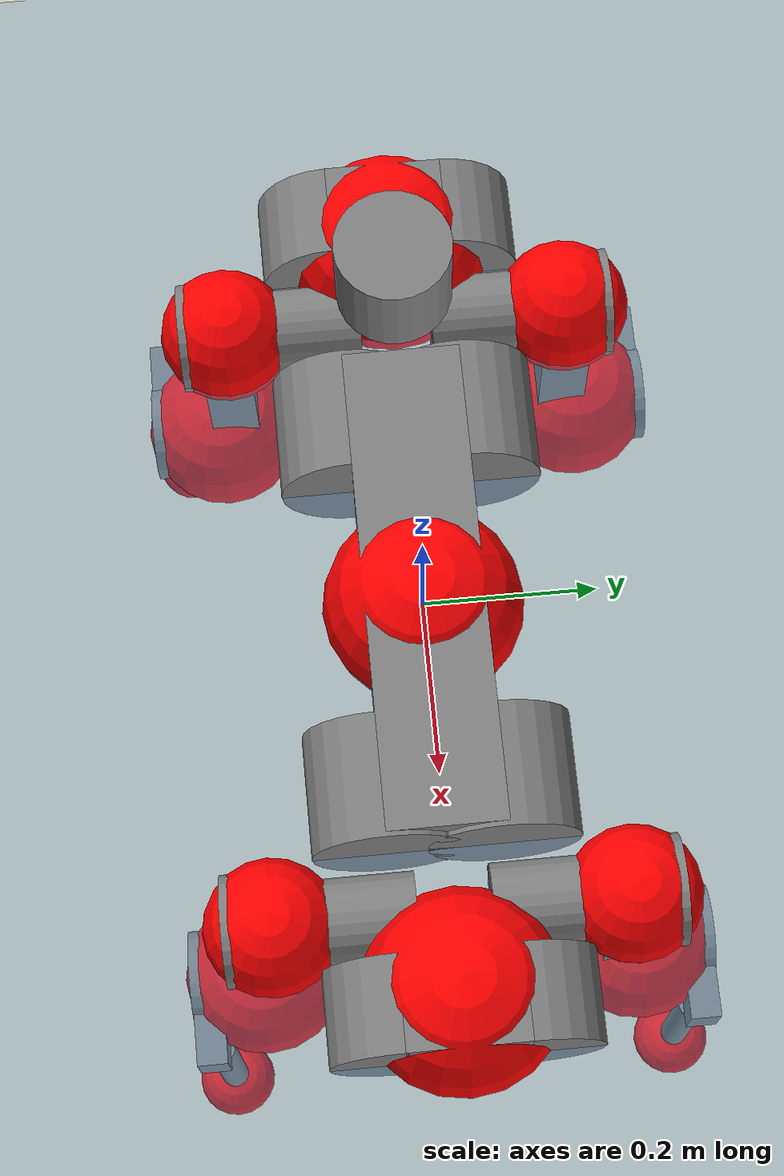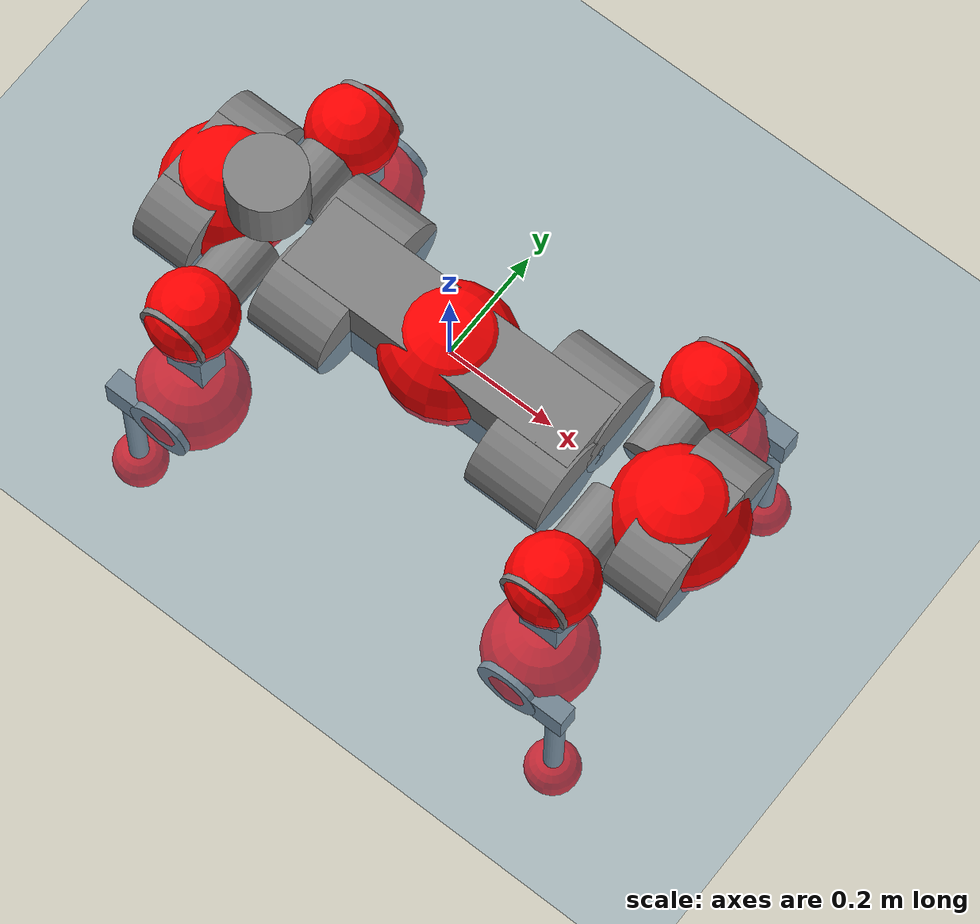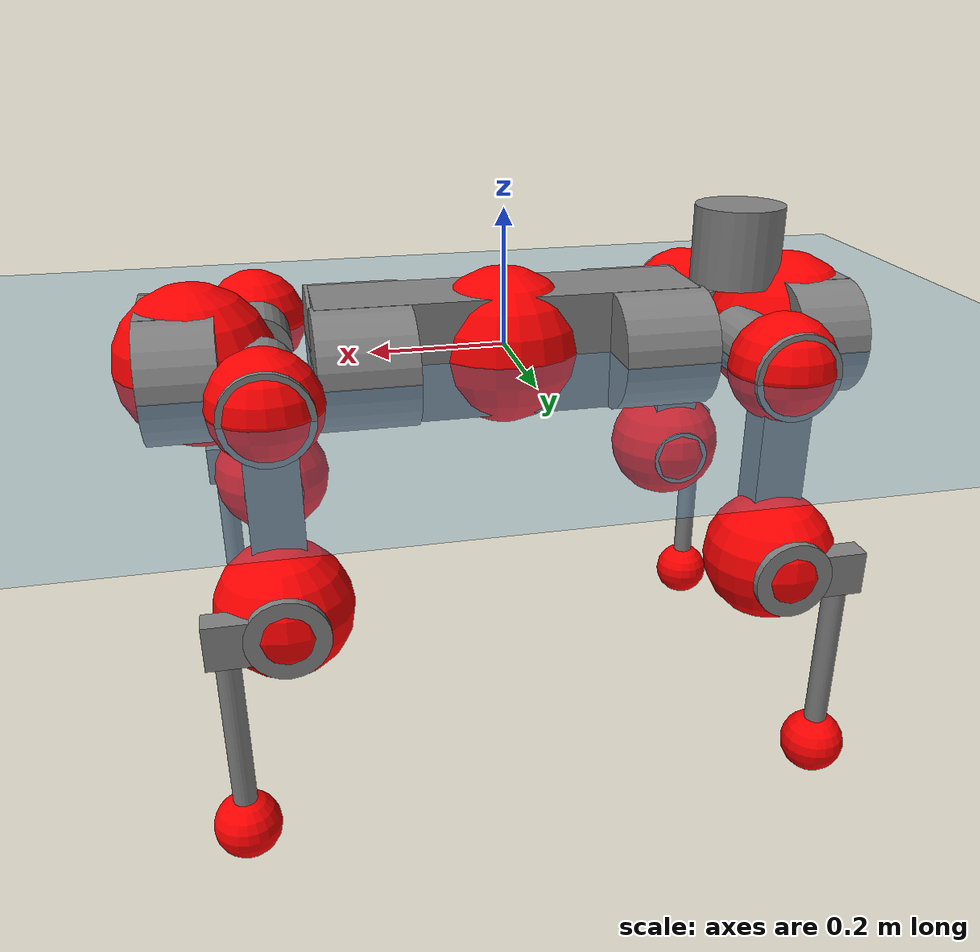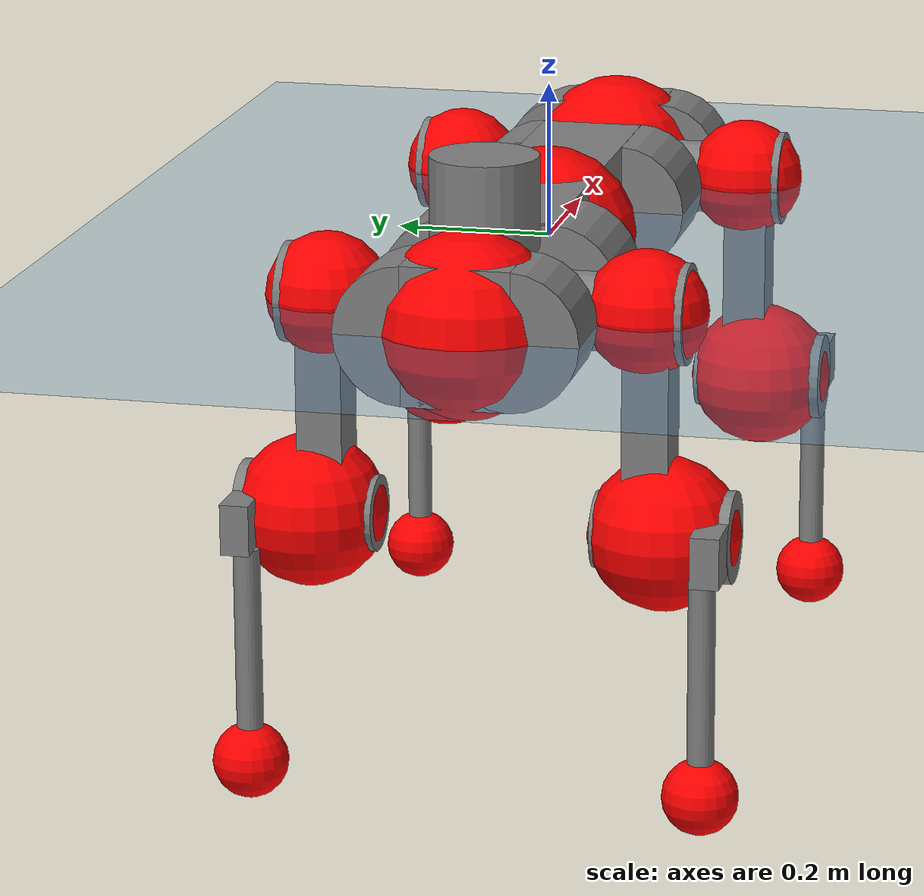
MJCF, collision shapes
<mujoco model="anymal_c">
  <compiler angle="radian" assetdir="assets" balanceinertia="true" inertiafromgeom="false"/>

  <option timestep="0.005" density="1.2" viscosity="2e-05"/>

  <size nkey="1"/>

  <visual>
    <quality shadowsize="8192"/>
    <map shadowclip="0.5"/>
  </visual>

  <default>
    <default class="/">
      <material specular="0" shininess="0.25"/>
      <geom contype="0" conaffinity="0" group="1" solref="-1000 -80"/>
      <site size="0.01 0.005 0.005" group="5"/>
      <general forcelimited="true" forcerange="-80 80" biastype="affine" gainprm="80" biasprm="0 -80 -2"/>
      <default class="anymal_c">
        <joint armature="0.01" damping="0.01" frictionloss="0.1"/>
        <default class="visual">
          <geom type="mesh" group="2"/>
          <default class="visual_zflip"/>
        </default>
        <default class="collision">
          <geom type="cylinder" group="3"/>
          <default class="foot">
            <geom size="0.03 0 0" type="sphere" condim="6" priority="1" friction="0.8 0.02 0.01" solimp="0.015 1 0.03"/>
          </default>
        </default>
      </default>
      <default class="reward_collision_sphere">
        <geom group="5" rgba="1 0 0 1"/>
      </default>
    </default>
  </default>

  <asset>
    <texture type="skybox" colorspace="auto" name="//unnamed_texture_0" builtin="gradient" rgb1="0.95 0.95 0.95" rgb2="0.95 0.95 0.95" width="100" height="600"/>
    <texture type="2d" colorspace="auto" name="texplane" builtin="checker" rgb1="0.345 0.575 0.748" rgb2="0.345 0.575 0.748" markrgb="1 1 1" width="512" height="512"/>
    <texture type="2d" colorspace="linear" name="base" file="base.png"/>
    <texture type="2d" colorspace="linear" name="top_shell" file="top_shell.png"/>
    <texture type="2d" colorspace="linear" name="bottom_shell" file="bottom_shell.png"/>
    <texture type="2d" colorspace="linear" name="remote" file="remote.png"/>
    <texture type="2d" colorspace="linear" name="hatch" file="hatch.png"/>
    <texture type="2d" colorspace="linear" name="handle" file="handle.png"/>
    <texture type="2d" colorspace="linear" name="face" file="face.png"/>
    <texture type="2d" colorspace="linear" name="battery" file="battery.png"/>
    <texture type="2d" colorspace="linear" name="lidar_cage" file="lidar_cage.png"/>
    <texture type="2d" colorspace="linear" name="depth_camera" file="depth_camera.png"/>
    <texture type="2d" colorspace="linear" name="wide_angle_camera" file="wide_angle_camera.png"/>
    <texture type="2d" colorspace="linear" name="lidar" file="lidar.png"/>
    <texture type="2d" colorspace="linear" name="drive" file="drive.png"/>
    <texture type="2d" colorspace="linear" name="hip_l" file="hip_l.png"/>
    <texture type="2d" colorspace="linear" name="shank_l" file="shank_l.png"/>
    <texture type="2d" colorspace="linear" name="foot" file="foot.png"/>
    <texture type="2d" colorspace="linear" name="thigh" file="thigh.png"/>
    <texture type="2d" colorspace="linear" name="shank_r" file="shank_r.png"/>
    <texture type="2d" colorspace="linear" name="hip_r" file="hip_r.png"/>
    <material name="MatPlane" class="/" texture="texplane" texuniform="true" texrepeat="2 2" specular="0.9" shininess="0.5"/>
    <material name="black_plastic" class="/" rgba="0.007 0.007 0.007 1"/>
    <material name="green" class="/" rgba="0.052 0.178 0.033 1"/>
    <material name="red" class="/" rgba="0.178 0.006 0.005 1"/>
    <material name="yellow" class="/" rgba="0.178 0.119 0.006 1"/>
    <material name="lwl" class="/" rgba="0.8 0.8 0.8 1"/>
    <material name="base" class="/" texture="base"/>
    <material name="top_shell" class="/" texture="top_shell"/>
    <material name="bottom_shell" class="/" texture="bottom_shell"/>
    <material name="hip_l" class="/" texture="hip_l"/>
    <material name="thigh" class="/" texture="thigh"/>
    <material name="shank_l" class="/" texture="shank_l"/>
    <material name="foot" class="/" texture="foot"/>
    <material name="hip_r" class="/" texture="hip_r"/>
    <material name="shank" class="/" texture="shank_r"/>
    <material name="hatch" class="/" texture="hatch"/>
    <material name="remote" class="/" texture="remote"/>
    <material name="handle" class="/" texture="handle"/>
    <material name="face" class="/" texture="face"/>
    <material name="depth_camera" class="/" texture="depth_camera"/>
    <material name="wide_angle_camera" class="/" texture="wide_angle_camera"/>
    <material name="battery" class="/" texture="battery"/>
    <material name="lidar_cage" class="/" texture="lidar_cage"/>
    <material name="lidar" class="/" texture="lidar"/>
    <material name="drive" class="/" texture="drive"/>
    <mesh name="base_0" class="/" file="base_0.obj"/>
    <mesh name="base_1" class="/" file="base_1.obj"/>
    <mesh name="base_2" class="/" file="base_2.obj"/>
    <mesh name="base_3" class="/" file="base_3.obj"/>
    <mesh name="base_4" class="/" file="base_4.obj"/>
    <mesh name="base_5" class="/" file="base_5.obj"/>
    <mesh name="top_shell" class="/" file="top_shell.obj"/>
    <mesh name="bottom_shell" class="/" file="bottom_shell.obj"/>
    <mesh name="remote" class="/" file="remote.obj"/>
    <mesh name="handle" class="/" file="handle.obj"/>
    <mesh name="face" class="/" file="face.obj"/>
    <mesh name="wide_angle_camera" class="/" file="wide_angle_camera.obj"/>
    <mesh name="depth_camera" class="/" file="depth_camera.obj"/>
    <mesh name="battery" class="/" file="battery.obj"/>
    <mesh name="lidar_cage" class="/" file="lidar_cage.obj"/>
    <mesh name="lidar" class="/" file="lidar.obj"/>
    <mesh name="drive" class="/" file="drive.obj"/>
    <mesh name="hip_l" class="/" file="hip_l.obj"/>
    <mesh name="thigh" class="/" file="thigh.obj"/>
    <mesh name="shank_l" class="/" file="shank_l.obj"/>
    <mesh name="foot" class="/" file="foot.obj"/>
    <mesh name="hip_r" class="/" file="hip_r.obj"/>
    <mesh name="hatch" class="/" file="hatch.obj"/>
    <mesh name="shank_r" class="/" file="shank_r.obj"/>
  </asset>

  <worldbody>
    <geom name="floor" class="/" size="100 100 0.125" type="plane" group="0" material="MatPlane"/>
    <light name="toplight_shadow" class="/" pos="0 0 5" dir="0.0990148 0.0990148 -0.990148" type="directional" ambient="0.04 0.04 0.04" diffuse="0.55 0.55 0.55" specular="0.12 0.12 0.12"/>
    <light name="toplight_fill" class="/" pos="0 0 5" dir="0.0990148 0.0990148 -0.990148" type="directional" castshadow="false" ambient="0.04 0.04 0.04" diffuse="0.3 0.3 0.3" specular="0.08 0.08 0.08"/>
    <body name="trunk" childclass="anymal_c" pos="0.000148965 0.000657043 -0.000279994" quat="1 3.73829e-06 2.02993e-06 -4.49484e-06">
      <inertial pos="0.00275821 0.000336517 0.0480805" quat="0.502191 0.495976 0.501018 0.500792" mass="17.5544" diaginertia="0.621971 0.413796 0.205837"/>
      <joint name="//unnamed_joint_0" type="free" armature="0" damping="0" frictionloss="0"/>
      <geom name="//unnamed_geom_1" class="visual" material="green" mesh="base_0"/>
      <geom name="//unnamed_geom_2" class="visual" material="yellow" mesh="base_1"/>
      <geom name="//unnamed_geom_3" class="visual" material="red" mesh="base_2"/>
      <geom name="//unnamed_geom_4" class="visual" material="black_plastic" mesh="base_3"/>
      <geom name="//unnamed_geom_5" class="visual" material="lwl" mesh="base_4"/>
      <geom name="//unnamed_geom_6" class="visual" material="base" mesh="base_5"/>
      <geom name="trunk_1" class="collision" size="0.280597 0.0677303 0.0870818" type="box"/>
      <geom name="trunk_2" class="collision" size="0.0870818 0.0701492" pos="0.215946 0.0644334 0" quat="0.707107 0 0.707107 0"/>
      <geom name="trunk_3" class="collision" size="0.0870818 0.0701492" pos="-0.215946 0.0644334 0" quat="0.707107 0 0.707107 0"/>
      <geom name="trunk_4" class="collision" size="0.0870818 0.0701492" pos="0.215946 -0.0644334 0" quat="0.707107 0 0.707107 0"/>
      <geom name="trunk_5" class="collision" size="0.0870818 0.0701492" pos="-0.215946 -0.0644334 0" quat="0.707107 0 0.707107 0"/>
      <geom name="//unnamed_geom_12" class="visual" material="top_shell" mesh="top_shell"/>
      <geom name="//unnamed_geom_13" class="visual" material="bottom_shell" mesh="bottom_shell"/>
      <geom name="//unnamed_geom_14" class="visual" material="remote" mesh="remote"/>
      <geom name="//unnamed_geom_15" class="visual" material="handle" mesh="handle"/>
      <geom name="//unnamed_geom_16" class="visual" pos="0.411539 0 0" quat="1 0 0 0" material="face" mesh="face"/>
      <geom name="trunk_6" class="collision" size="0.0532167 0.0677303 0.0870818" pos="0.466146 0 0" type="box"/>
      <geom name="//unnamed_geom_18" class="collision" size="0.0870818 0.0532167" pos="0.466146 0.0644334 0" quat="0.707107 0 0.707107 0"/>
      <geom name="//unnamed_geom_19" class="collision" size="0.0870818 0.0532167" pos="0.466146 -0.0644334 0" quat="0.707107 0 0.707107 0"/>
      <geom name="//unnamed_geom_20" class="visual" pos="0.458352 0 -0.028864" quat="0.965926 0 0.258819 0" material="depth_camera" mesh="depth_camera"/>
      <geom name="//unnamed_geom_21" class="visual" pos="0.509335 0 0.0148112" material="wide_angle_camera" mesh="wide_angle_camera"/>
      <geom name="//unnamed_geom_22" class="visual_zflip" pos="-0.411539 0 0" quat="0 0 0 1" material="face" mesh="face"/>
      <geom name="trunk_7" class="collision" size="0.0532167 0.0677303 0.0870818" pos="-0.466146 0 0" quat="0 0 0 1" type="box"/>
      <geom name="//unnamed_geom_24" class="collision" size="0.0870818 0.0532167" pos="-0.466146 -0.0644334 0" quat="0 -0.707107 0 0.707107"/>
      <geom name="//unnamed_geom_25" class="collision" size="0.0870818 0.0532167" pos="-0.466146 0.0644334 0" quat="0 -0.707107 0 0.707107"/>
      <geom name="//unnamed_geom_26" class="visual" pos="-0.458352 0 -0.028864" quat="0 -0.258819 0 0.965926" material="depth_camera" mesh="depth_camera"/>
      <geom name="//unnamed_geom_27" class="visual_zflip" pos="-0.509335 0 0.0148112" quat="0 0 0 1" material="wide_angle_camera" mesh="wide_angle_camera"/>
      <geom name="//unnamed_geom_28" class="visual" material="battery" mesh="battery"/>
      <geom name="//unnamed_geom_29" class="visual" pos="0 0.0694298 0.0287682" quat="0.683013 -0.183013 0.183013 0.683013" material="depth_camera" mesh="depth_camera"/>
      <geom name="//unnamed_geom_30" class="visual" pos="0 -0.0694298 0.0287682" quat="0.683013 0.183013 0.183013 -0.683013" material="depth_camera" mesh="depth_camera"/>
      <geom name="//unnamed_geom_31" class="visual" pos="-0.3614 0 0.0727204" quat="1 0 0 0" material="lidar_cage" mesh="lidar_cage"/>
      <geom name="trunk_8" class="collision" size="0.0677303 0.0580545" pos="-0.3614 0 0.132084"/>
      <geom name="//unnamed_geom_33" class="visual" pos="-0.3614 -2.84358e-05 0.140692" quat="0.707107 0 0 -0.707107" material="lidar" mesh="lidar"/>
      <geom name="//unnamed_geom_34" class="visual" pos="0.297758 0.0957541 -1.18882e-09" quat="0.258819 0.965926 0 0" material="drive" mesh="drive"/>
      <geom name="//unnamed_geom_35" class="visual" pos="0.297758 -0.0957541 1.18882e-09" quat="0.258819 -0.965926 0 0" material="drive" mesh="drive"/>
      <geom name="//unnamed_geom_36" class="visual" pos="-0.297758 0.0957541 1.18882e-09" quat="0 0 0.965926 -0.258819" material="drive" mesh="drive"/>
      <geom name="//unnamed_geom_37" class="visual" pos="-0.297758 -0.0957541 -1.18882e-09" quat="0 0 -0.965926 -0.258819" material="drive" mesh="drive"/>
      <geom name="//unnamed_geom_38" class="visual" pos="0.115171 0 0.0722257" quat="1 0 0 0" material="hatch" mesh="hatch"/>
      <geom name="//unnamed_geom_39" class="reward_collision_sphere" size="0.116109"/>
      <geom name="//unnamed_geom_40" class="reward_collision_sphere" size="0.116109" pos="0.446785 0 0"/>
      <geom name="//unnamed_geom_41" class="reward_collision_sphere" size="0.116109" pos="-0.446785 0 0"/>
      <site name="imu" pos="0.243358 0.00348775 0.0490939" size="0.00967576"/>
      <camera name="track" pos="0 -1.84095 0" quat="0.707107 0.707107 0 0" mode="trackcom"/>
      <camera name="ego_camera" pos="0.446785 0 -0.0395757" quat="-0.5 -0.5 0.5 0.5"/>
      <body name="LF_HIP" pos="0.297245 0.0968997 -0.000238389" quat="0.258655 0.96597 -8.42269e-05 -0.000119256">
        <inertial pos="0.0562125 -0.013768 -0.00865329" quat="-0.127233 0.710086 -0.134788 0.679281" mass="2.53533" diaginertia="0.0056475 0.00329241 0.0031348"/>
        <joint name="LF_HAA" pos="0 0 0" axis="0.999999 9.53406e-05 0.00159333" range="-0.700384 0.476884" armature="0.0098297" damping="0.0107419" frictionloss="0.0924509"/>
        <geom name="//unnamed_geom_42" class="visual" pos="0 -6.99327e-05 1.14864e-05" quat="0.258819 -0.965926 0 0" material="hip_l" mesh="hip_l"/>
        <geom name="//unnamed_geom_43" class="visual" pos="0.0594721 -0.0711346 -0.0415793" quat="0.183013 -0.683013 0.683013 0.183013" material="drive" mesh="drive"/>
        <geom name="//unnamed_geom_44" class="collision" size="0.0483788 0.0677303" pos="0.0594721 -0.0110087 -0.00683176" quat="-0.353553 -0.612372 0.612372 -0.353553"/>
        <body name="LF_THIGH" pos="0.0597756 -0.0665362 -0.0412822" quat="0.183093 -0.683244 0.682684 0.183298">
          <inertial pos="0.0299917 -0.000775699 -0.242788" quat="0.993115 -0.00455868 -0.0816213 0.0839017" mass="2.78093" diaginertia="0.0290509 0.0197075 0.00394646"/>
          <joint name="LF_HFE" pos="0 0 0" axis="1 0.000274932 0.00063863" stiffness="0.00382957" range="-3.15251 3.14126" armature="0.00944019" damping="0.0118635" frictionloss="0.0963787"/>
          <geom name="//unnamed_geom_45" class="visual" pos="0.00144006 2.2692e-06 0" quat="0.707107 0 0 -0.707107" material="thigh" mesh="thigh"/>
          <geom name="//unnamed_geom_46" class="collision" size="0.0628924 0.038703" pos="0.0397143 0 0" quat="0.5 0.5 -0.5 -0.5"/>
          <geom name="//unnamed_geom_47" class="collision" size="0.0362841 0.0290273 0.136732" pos="0.0297857 0 -0.139815" quat="0.707107 0 0 -0.707107" type="box"/>
          <geom name="//unnamed_geom_48" class="visual" pos="0.0995835 0 -0.281977" quat="1 0 0 0" material="drive" mesh="drive"/>
          <geom name="//unnamed_geom_49" class="collision" size="0.0483788 0.0677303" pos="0.0300835 0 -0.281977" quat="0.707107 0 0.707107 0"/>
          <geom name="//unnamed_geom_50" class="reward_collision_sphere" size="0.0774061" pos="0.0248214 0 0"/>
          <body name="LF_SHANK" pos="0.0993851 -0.000667498 -0.281943" quat="1 -7.24629e-05 0.000173635 0.000302721">
            <inertial pos="0.00449612 -0.0563981 -0.0804577" quat="0.992914 -0.115997 -0.00165918 -0.0257475" mass="0.532255" diaginertia="0.00987397 0.00612008 0.00105292"/>
            <joint name="LF_KFE" pos="0 0 0" axis="1 -0.000170133 0.000480152" range="-3.15171 3.13945" armature="0.0101384" damping="0.00982297" frictionloss="0.096195"/>
            <geom name="//unnamed_geom_51" class="visual" pos="0.000469572 0.00250378 0" quat="0.707107 0 0 -0.707107" material="shank_l" mesh="shank_l"/>
            <geom name="LF_kfe_act" class="collision" size="0.0580545 0.0193515" pos="0.0198571 0 0" quat="0.5 0.5 -0.5 -0.5"/>
            <geom name="//unnamed_geom_53" class="collision" size="0.0556346 0.0326557 0.0183839" pos="0.0198571 -0.0529265 0" quat="0.5 0.5 -0.5 -0.5" type="box"/>
            <geom name="//unnamed_geom_54" class="visual" pos="0.0129567 -0.0801491 -0.334385" quat="0.382683 0 0 -0.92388" material="foot" mesh="foot"/>
            <geom name="LF_calf" class="collision" size="0.0169326 0.136672" pos="0.0129568 -0.080956 -0.167193" quat="0.707107 0 0 -0.707107"/>
            <geom name="LF_foot" class="foot" size="0.0297607" pos="0.0129568 -0.080956 -0.312124" quat="0.707107 0 0 -0.707107"/>
            <geom name="//unnamed_geom_57" class="reward_collision_sphere" size="0.0967576" pos="-0.0496428 0 0"/>
            <geom name="//unnamed_geom_58" class="reward_collision_sphere" size="0.0483788" pos="0.0129568 -0.080956 -0.312124"/>
            <site name="LF_foot" class="foot" pos="0.0129568 -0.080956 -0.312124" quat="0.707107 0 0 -0.707107" size="0.00967576"/>
          </body>
        </body>
      </body>
      <body name="RF_HIP" pos="0.298056 -0.095557 0.00121316" quat="0.258808 -0.965929 4.50966e-05 -5.01128e-05">
        <inertial pos="0.056334 0.0149777 -0.00777983" quat="0.134248 0.679693 0.128077 0.709642" mass="2.51481" diaginertia="0.00561121 0.00320041 0.00308563"/>
        <joint name="RF_HAA" pos="0 0 0" axis="0.999996 -7.25045e-05 -0.00280437" range="-0.49249 0.718068" armature="0.00983777" damping="0.0111878" frictionloss="0.0970484"/>
        <geom name="//unnamed_geom_59" class="visual" pos="0 6.99321e-05 1.14864e-05" quat="0.258819 0.965926 0 0" material="hip_r" mesh="hip_r"/>
        <geom name="//unnamed_geom_60" class="visual" pos="0.0594721 0.0711346 -0.0415793" quat="0.183013 0.683013 0.683013 -0.183013" material="drive" mesh="drive"/>
        <geom name="//unnamed_geom_61" class="collision" size="0.0483788 0.0677303" pos="0.0594721 0.0110087 -0.00683176" quat="-0.353553 0.612372 0.612372 0.353553"/>
        <body name="RF_THIGH" pos="0.0600466 0.067803 -0.0430179" quat="0.182852 0.682806 0.6832 -0.183247">
          <inertial pos="0.0312787 -0.000820581 -0.242648" quat="0.992425 -0.00859296 -0.0828643 0.0902908" mass="2.73763" diaginertia="0.0289146 0.019651 0.00395249"/>
          <joint name="RF_HFE" pos="0 0 0" axis="0.999995 -0.00122734 0.00290229" stiffness="0.00560289" range="-3.1481 3.13938" armature="0.00959855" damping="0.0121169" frictionloss="0.0965581"/>
          <geom name="//unnamed_geom_62" class="visual" pos="0.00144006 2.2692e-06 0" quat="0.707107 0 0 -0.707107" material="thigh" mesh="thigh"/>
          <geom name="//unnamed_geom_63" class="collision" size="0.0628924 0.038703" pos="0.0397143 0 0" quat="0.5 0.5 0.5 0.5"/>
          <geom name="//unnamed_geom_64" class="collision" size="0.0362841 0.0290273 0.136732" pos="0.0297857 0 -0.139815" quat="0.707107 0 0 0.707107" type="box"/>
          <geom name="//unnamed_geom_65" class="visual" pos="0.0995835 0 -0.281977" quat="1 0 0 0" material="drive" mesh="drive"/>
          <geom name="//unnamed_geom_66" class="collision" size="0.0483788 0.0677303" pos="0.0300835 0 -0.281977" quat="0.707107 0 0.707107 0"/>
          <geom name="//unnamed_geom_67" class="reward_collision_sphere" size="0.0774061" pos="0.0248214 0 0"/>
          <body name="RF_SHANK" pos="0.0990814 0.000266859 -0.280899" quat="1 3.59204e-05 -9.64186e-06 -0.000109013">
            <inertial pos="0.00537746 0.0563412 -0.0804992" quat="0.992915 0.116273 0.00324398 0.0242721" mass="0.530684" diaginertia="0.00985921 0.00610376 0.00106342"/>
            <joint name="RF_KFE" pos="0 0 0" axis="0.999985 0.00541593 -0.000320494" range="-3.12567 3.1348" armature="0.00978614" damping="0.00874052" frictionloss="0.0982102"/>
            <geom name="//unnamed_geom_68" class="visual" pos="0.00046957 -0.00250378 0" quat="0.707107 0 0 0.707107" material="shank" mesh="shank_r"/>
            <geom name="RF_kfe_act" class="collision" size="0.0580545 0.0193515" pos="0.0198571 0 0" quat="0.5 0.5 0.5 0.5"/>
            <geom name="//unnamed_geom_70" class="collision" size="0.0556346 0.0326557 0.0183839" pos="0.0198571 0.0529265 0" quat="0.5 0.5 0.5 0.5" type="box"/>
            <geom name="//unnamed_geom_71" class="visual" pos="0.0129569 0.0801491 -0.334385" quat="0.382683 0 0 0.92388" material="foot" mesh="foot"/>
            <geom name="RF_calf" class="collision" size="0.0169326 0.136672" pos="0.0129568 0.080956 -0.167193" quat="0.707107 0 0 0.707107"/>
            <geom name="RF_foot" class="foot" size="0.0304481" pos="0.0129568 0.080956 -0.312124" quat="0.707107 0 0 0.707107"/>
            <geom name="//unnamed_geom_74" class="reward_collision_sphere" size="0.0967576" pos="-0.0496428 0 0"/>
            <geom name="//unnamed_geom_75" class="reward_collision_sphere" size="0.0483788" pos="0.0129568 0.080956 -0.312124"/>
            <site name="RF_foot" class="foot" pos="0.0129568 0.080956 -0.312124" quat="0.707107 0 0 0.707107" size="0.00967576"/>
          </body>
        </body>
      </body>
      <body name="LH_HIP" pos="-0.296742 0.0964175 -5.12325e-05" quat="-3.77983e-05 2.02189e-05 0.965931 -0.2588">
        <inertial pos="0.0564216 0.014292 -0.00902138" quat="0.136532 0.678631 0.12694 0.710427" mass="2.51957" diaginertia="0.0056318 0.00323997 0.00311166"/>
        <joint name="LH_HAA" pos="0 0 0" axis="0.999999 0.00056685 0.000936638" range="-0.484439 0.726508" armature="0.0096757" damping="0.0070628" frictionloss="0.0989219"/>
        <geom name="//unnamed_geom_76" class="visual" pos="0 6.99321e-05 1.14864e-05" quat="-0.258819 -0.965926 0 0" material="hip_r" mesh="hip_r"/>
        <geom name="//unnamed_geom_77" class="visual" pos="0.0594721 0.0711346 -0.0415793" quat="0.183013 0.683013 0.683013 -0.183013" material="drive" mesh="drive"/>
        <geom name="//unnamed_geom_78" class="collision" size="0.0483788 0.0677303" pos="0.0594721 0.0110087 -0.00683176" quat="-0.353553 0.612372 0.612372 0.353553"/>
        <body name="LH_THIGH" pos="0.0597725 0.0667911 -0.0428103" quat="0.1831 0.682964 0.683134 -0.182652">
          <inertial pos="0.0305748 -1.69335e-05 -0.243265" quat="0.992522 -0.00786822 -0.0799632 0.0918907" mass="2.80869" diaginertia="0.0289964 0.0196547 0.00397741"/>
          <joint name="LH_HFE" pos="0 0 0" axis="0.999993 -0.00302416 0.00205746" range="-3.13004 3.12188" armature="0.00973639" damping="0.00903851" frictionloss="0.098009"/>
          <geom name="//unnamed_geom_79" class="visual" pos="0.00144006 2.2692e-06 0" quat="0.707107 0 0 -0.707107" material="thigh" mesh="thigh"/>
          <geom name="//unnamed_geom_80" class="collision" size="0.0628924 0.038703" pos="0.0397143 0 0" quat="0.5 0.5 -0.5 -0.5"/>
          <geom name="//unnamed_geom_81" class="collision" size="0.0362841 0.0290273 0.136732" pos="0.0297857 0 -0.139815" quat="0.707107 0 0 -0.707107" type="box"/>
          <geom name="//unnamed_geom_82" class="visual" pos="0.0995835 0 -0.281977" quat="1 0 0 0" material="drive" mesh="drive"/>
          <geom name="//unnamed_geom_83" class="collision" size="0.0483788 0.0677303" pos="0.0300835 0 -0.281977" quat="0.707107 0 0.707107 0"/>
          <geom name="//unnamed_geom_84" class="reward_collision_sphere" size="0.0774061" pos="0.0248214 0 0"/>
          <body name="LH_SHANK" pos="0.100633 -0.00184813 -0.282432" quat="1 0.000293146 0.000138484 4.81487e-05">
            <inertial pos="0.0057202 0.0563379 -0.0800584" quat="0.992961 0.115804 -0.000276386 0.0248599" mass="0.521219" diaginertia="0.00967184 0.00605436 0.00105012"/>
            <joint name="LH_KFE" pos="0 0 0" axis="0.999999 -0.000355472 0.00131912" range="-3.13263 3.15403" armature="0.00971898" damping="0.0124237" frictionloss="0.0957751"/>
            <geom name="//unnamed_geom_85" class="visual" pos="0.00046957 -0.00250378 0" quat="-0.707107 0 0 -0.707107" material="shank" mesh="shank_r"/>
            <geom name="LH_kfe_act" class="collision" size="0.0580545 0.0193515" pos="0.0198571 0 0" quat="0.5 0.5 -0.5 -0.5"/>
            <geom name="//unnamed_geom_87" class="collision" size="0.0556346 0.0326557 0.0183839" pos="0.0198571 0.0529265 0" quat="0.5 0.5 -0.5 -0.5" type="box"/>
            <geom name="//unnamed_geom_88" class="visual" pos="0.0129569 0.0801491 -0.334385" quat="-0.382683 0 0 -0.92388" material="foot" mesh="foot"/>
            <geom name="LH_calf" class="collision" size="0.0169326 0.136672" pos="0.0129568 0.080956 -0.167193" quat="0.707107 0 0 -0.707107"/>
            <geom name="LH_foot" class="foot" size="0.0299025" pos="0.0129568 0.080956 -0.312124" quat="0.707107 0 0 -0.707107"/>
            <geom name="//unnamed_geom_91" class="reward_collision_sphere" size="0.0967576" pos="-0.0496428 0 0"/>
            <geom name="//unnamed_geom_92" class="reward_collision_sphere" size="0.0483788" pos="0.0129568 0.080956 -0.312124"/>
            <site name="LH_foot" class="foot" pos="0.0129568 0.080956 -0.312124" quat="0.707107 0 0 -0.707107" size="0.00967576"/>
          </body>
        </body>
      </body>
      <body name="RH_HIP" pos="-0.297174 -0.0968383 0.000381297" quat="-0.000154602 -0.000142807 -0.965991 -0.258574">
        <inertial pos="0.0567025 -0.0145081 -0.00750793" quat="-0.125769 0.709977 -0.136241 0.679377" mass="2.48882" diaginertia="0.0055403 0.00321247 0.00309283"/>
        <joint name="RH_HAA" pos="0 0 0" axis="0.999998 -0.00192285 0.00103446" stiffness="0.00042354" range="-0.724706 0.490589" armature="0.00970229" damping="0.00892389" frictionloss="0.0958988"/>
        <geom name="//unnamed_geom_93" class="visual" pos="0 -6.99327e-05 1.14864e-05" quat="-0.258819 0.965926 0 0" material="hip_l" mesh="hip_l"/>
        <geom name="//unnamed_geom_94" class="visual" pos="0.0594721 -0.0711346 -0.0415793" quat="-0.183013 0.683013 -0.683013 -0.183013" material="drive" mesh="drive"/>
        <geom name="//unnamed_geom_95" class="collision" size="0.0483788 0.0677303" pos="0.0594721 -0.0110087 -0.00683176" quat="0.353553 0.612372 -0.612372 0.353553"/>
        <body name="RH_THIGH" pos="0.0590923 -0.0675648 -0.0420261" quat="-0.183106 0.68298 -0.683 -0.183087">
          <inertial pos="0.0307898 -0.000176767 -0.243797" quat="0.993052 -0.00482542 -0.0829351 0.0833389" mass="2.8078" diaginertia="0.0293954 0.0199801 0.00400868"/>
          <joint name="RH_HFE" pos="0 0 0" axis="1 -0.000232548 0.000363677" stiffness="0.0020707" range="-3.13204 3.12511" armature="0.009805" damping="0.0069749" frictionloss="0.0985892"/>
          <geom name="//unnamed_geom_96" class="visual" pos="0.00144006 2.2692e-06 0" quat="0.707107 0 0 -0.707107" material="thigh" mesh="thigh"/>
          <geom name="//unnamed_geom_97" class="collision" size="0.0628924 0.038703" pos="0.0397143 0 0" quat="0.5 0.5 0.5 0.5"/>
          <geom name="//unnamed_geom_98" class="collision" size="0.0362841 0.0290273 0.136732" pos="0.0297857 0 -0.139815" quat="0.707107 0 0 0.707107" type="box"/>
          <geom name="//unnamed_geom_99" class="visual" pos="0.0995835 0 -0.281977" quat="1 0 0 0" material="drive" mesh="drive"/>
          <geom name="//unnamed_geom_100" class="collision" size="0.0483788 0.0677303" pos="0.0300835 0 -0.281977" quat="0.707107 0 0.707107 0"/>
          <geom name="//unnamed_geom_101" class="reward_collision_sphere" size="0.0774061" pos="0.0248214 0 0"/>
          <body name="RH_SHANK" pos="0.097923 0.000753416 -0.281811" quat="1 0.000173285 -0.000299236 -7.57278e-05">
            <inertial pos="0.00646234 -0.0562033 -0.0801821" quat="0.99288 -0.116281 -0.00143879 -0.0257988" mass="0.535798" diaginertia="0.00983269 0.00608923 0.00106911"/>
            <joint name="RH_KFE" pos="0 0 0" axis="0.999992 -0.00399345 2.2966e-05" range="-3.115 3.13956" armature="0.00964014" damping="0.00792971" frictionloss="0.0972457"/>
            <geom name="//unnamed_geom_102" class="visual" pos="0.000469572 0.00250378 0" quat="0.707107 0 0 -0.707107" material="shank_l" mesh="shank_l"/>
            <geom name="RH_kfe_act" class="collision" size="0.0580545 0.0193515" pos="0.0198571 0 0" quat="0.5 0.5 0.5 0.5"/>
            <geom name="//unnamed_geom_104" class="collision" size="0.0556346 0.0326557 0.0183839" pos="0.0198571 -0.0529265 0" quat="0.5 0.5 0.5 0.5" type="box"/>
            <geom name="//unnamed_geom_105" class="visual" pos="0.0129567 -0.0801491 -0.334385" quat="0.382683 0 0 -0.92388" material="foot" mesh="foot"/>
            <geom name="RH_calf" class="collision" size="0.0169326 0.136672" pos="0.0129568 -0.080956 -0.167193" quat="0.707107 0 0 0.707107"/>
            <geom name="RH_foot" class="foot" size="0.0284704" pos="0.0129568 -0.080956 -0.312124" quat="0.707107 0 0 0.707107"/>
            <geom name="//unnamed_geom_108" class="reward_collision_sphere" size="0.0967576" pos="-0.0496428 0 0"/>
            <geom name="//unnamed_geom_109" class="reward_collision_sphere" size="0.0483788" pos="0.0129568 -0.080956 -0.312124"/>
            <site name="RH_foot" class="foot" pos="0.0129568 -0.080956 -0.312124" quat="0.707107 0 0 0.707107" size="0.00967576"/>
          </body>
        </body>
      </body>
    </body>
  </worldbody>

  <contact>
    <pair class="/" geom1="floor" geom2="LF_foot" name="//unnamed_contact_0"/>
    <pair class="/" geom1="floor" geom2="RF_foot" name="//unnamed_contact_1"/>
    <pair class="/" geom1="floor" geom2="LH_foot" name="//unnamed_contact_2"/>
    <pair class="/" geom1="floor" geom2="RH_foot" name="//unnamed_contact_3"/>
  </contact>

  <actuator>
    <general name="LF_HAA" class="/" joint="LF_HAA" forcerange="-81.1803 81.1803" gainprm="77.5696" biasprm="0 -77.5696 -1.85701"/>
    <general name="LF_HFE" class="/" joint="LF_HFE" forcerange="-80.1958 80.1958" gainprm="77.5696" biasprm="0 -77.5696 -1.85701"/>
    <general name="LF_KFE" class="/" joint="LF_KFE" forcerange="-76.0601 76.0601" gainprm="77.5696" biasprm="0 -77.5696 -1.85701"/>
    <general name="RF_HAA" class="/" joint="RF_HAA" forcerange="-79.0245 79.0245" gainprm="77.5696" biasprm="0 -77.5696 -1.85701"/>
    <general name="RF_HFE" class="/" joint="RF_HFE" forcerange="-80.0321 80.0321" gainprm="77.5696" biasprm="0 -77.5696 -1.85701"/>
    <general name="RF_KFE" class="/" joint="RF_KFE" forcerange="-75.0137 75.0137" gainprm="77.5696" biasprm="0 -77.5696 -1.85701"/>
    <general name="LH_HAA" class="/" joint="LH_HAA" forcerange="-77.0833 77.0833" gainprm="77.5696" biasprm="0 -77.5696 -1.85701"/>
    <general name="LH_HFE" class="/" joint="LH_HFE" forcerange="-79.2659 79.2659" gainprm="77.5696" biasprm="0 -77.5696 -1.85701"/>
    <general name="LH_KFE" class="/" joint="LH_KFE" forcerange="-79.8115 79.8115" gainprm="77.5696" biasprm="0 -77.5696 -1.85701"/>
    <general name="RH_HAA" class="/" joint="RH_HAA" forcerange="-76.6818 76.6818" gainprm="77.5696" biasprm="0 -77.5696 -1.85701"/>
    <general name="RH_HFE" class="/" joint="RH_HFE" forcerange="-77.6892 77.6892" gainprm="77.5696" biasprm="0 -77.5696 -1.85701"/>
    <general name="RH_KFE" class="/" joint="RH_KFE" forcerange="-77.7383 77.7383" gainprm="77.5696" biasprm="0 -77.5696 -1.85701"/>
  </actuator>

  <sensor>
    <gyro site="imu" name="imu_angular_velocity"/>
    <velocimeter site="imu" name="imu_linear_velocity"/>
    <framelinvel objtype="site" objname="LF_foot" name="LF_foot_global_linear_velocity"/>
    <framelinvel objtype="site" objname="RF_foot" name="RF_foot_global_linear_velocity"/>
    <framelinvel objtype="site" objname="LH_foot" name="LH_foot_global_linear_velocity"/>
    <framelinvel objtype="site" objname="RH_foot" name="RH_foot_global_linear_velocity"/>
  </sensor>

  <keyframe>
    <key name="home" qpos="0 0 0.55 1 0 0 0 0 0.4 -0.8 0 -0.4 0.8 0 -0.4 0.8 0 0.4 -0.8"/>
  </keyframe>
</mujoco>
